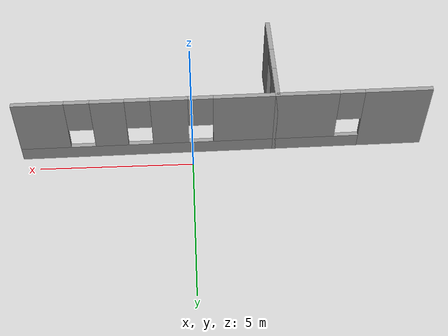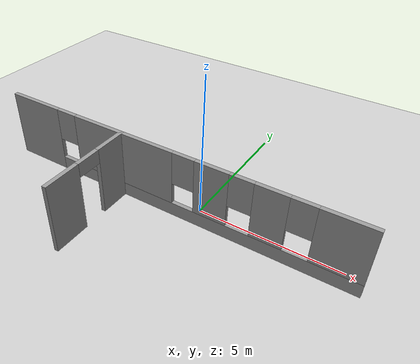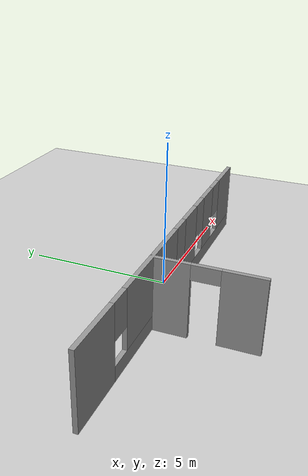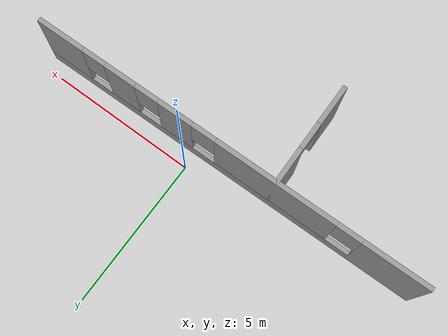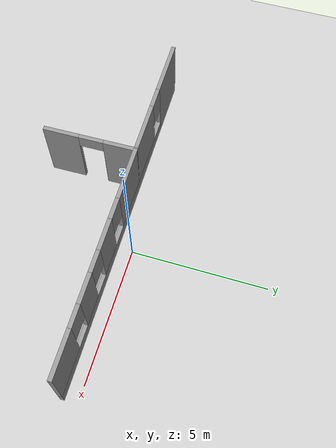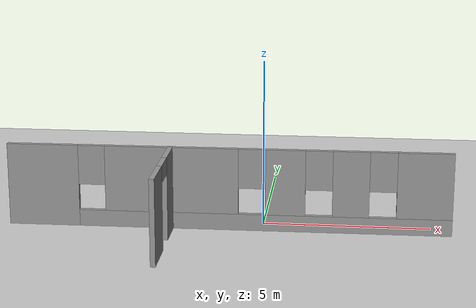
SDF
<sdf version="1.6">
 <world name="default">
  <model name="ground_plane">
   <static>1</static>
   <link name="link">
    <collision name="collision">
     <geometry><plane><normal>0 0 1</normal><size>100 100</size></plane></geometry>
     <surface>
      <contact><collide_bitmask>65535</collide_bitmask></contact>
      <friction><ode><mu>100</mu><mu2>50</mu2></ode></friction>
     </surface>
    </collision>
    <visual name="visual">
     <cast_shadows>0</cast_shadows>
     <geometry><plane><normal>0 0 1</normal><size>100 100</size></plane></geometry>
     <material>
      <script><uri>file://media/materials/scripts/gazebo.material</uri><name>Gazebo/Grey</name></script>
     </material>
    </visual>
   </link>
  </model>
  <model name="Robo-Space.sdf">
   <link name="Wall_3">
    <pose>-1.7 1.675 0 0 -0 1.5708</pose>
    <visual name="Wall_3_Visual_0">
     <pose>-1.0825 0 1.25 0 -0 0</pose>
     <geometry><box><size>1.335 0.15 2.5</size></box></geometry>
     <material>
      <script><uri>file://media/materials/scripts/gazebo.material</uri><name>Gazebo/Grey</name></script>
      <ambient>1 1 1 1</ambient>
      <shader type="pixel"/>
      <diffuse>0.7 0.7 0.7 1</diffuse>
      <specular>0.01 0.01 0.01 1</specular>
      <emissive>0 0 0 1</emissive>
     </material>
     <meta><layer>0</layer></meta>
    </visual>
    <visual name="Wall_3_Visual_1">
     <pose>1.1175 0 1.25 0 -0 0</pose>
     <geometry><box><size>1.265 0.15 2.5</size></box></geometry>
     <material>
      <script><uri>file://media/materials/scripts/gazebo.material</uri><name>Gazebo/Grey</name></script>
      <ambient>1 1 1 1</ambient>
      <shader type="pixel"/>
      <diffuse>0.7 0.7 0.7 1</diffuse>
      <specular>0.01 0.01 0.01 1</specular>
      <emissive>0 0 0 1</emissive>
     </material>
     <meta><layer>0</layer></meta>
    </visual>
    <visual name="Wall_3_Visual_2">
     <pose>0.035 0 2.25 0 -0 0</pose>
     <geometry><box><size>0.9 0.15 0.5</size></box></geometry>
     <material>
      <script><uri>file://media/materials/scripts/gazebo.material</uri><name>Gazebo/Grey</name></script>
      <ambient>1 1 1 1</ambient>
      <shader type="pixel"/>
      <diffuse>0.7 0.7 0.7 1</diffuse>
      <specular>0.01 0.01 0.01 1</specular>
      <emissive>0 0 0 1</emissive>
     </material>
     <meta><layer>0</layer></meta>
    </visual>
    <collision name="Wall_3_Collision_0">
     <pose>-1.0825 0 1.25 0 -0 0</pose>
     <geometry><box><size>1.335 0.15 2.5</size></box></geometry>
     <surface>
      <friction>
       <ode><mu>1</mu><mu2>1</mu2><fdir1>0 0 0</fdir1><slip1>0</slip1><slip2>0</slip2></ode>
       <torsional>
        <coefficient>1</coefficient>
        <patch_radius>0</patch_radius>
        <surface_radius>0</surface_radius>
        <use_patch_radius>1</use_patch_radius>
        <ode><slip>0</slip></ode>
       </torsional>
      </friction>
      <bounce><restitution_coefficient>0</restitution_coefficient><threshold>1e+06</threshold></bounce>
      <contact>
       <collide_without_contact>0</collide_without_contact>
       <collide_without_contact_bitmask>1</collide_without_contact_bitmask>
       <collide_bitmask>1</collide_bitmask>
       <ode>
        <soft_cfm>0</soft_cfm>
        <soft_erp>0.2</soft_erp>
        <kp>1e+13</kp>
        <kd>1</kd>
        <max_vel>0.01</max_vel>
        <min_depth>0</min_depth>
       </ode>
       <bullet>
        <split_impulse>1</split_impulse>
        <split_impulse_penetration_threshold>-0.01</split_impulse_penetration_threshold>
        <soft_cfm>0</soft_cfm>
        <soft_erp>0.2</soft_erp>
        <kp>1e+13</kp>
        <kd>1</kd>
       </bullet>
      </contact>
     </surface>
    </collision>
    <collision name="Wall_3_Collision_1">
     <pose>1.1175 0 1.25 0 -0 0</pose>
     <geometry><box><size>1.265 0.15 2.5</size></box></geometry>
     <surface>
      <friction>
       <ode><mu>1</mu><mu2>1</mu2><fdir1>0 0 0</fdir1><slip1>0</slip1><slip2>0</slip2></ode>
       <torsional>
        <coefficient>1</coefficient>
        <patch_radius>0</patch_radius>
        <surface_radius>0</surface_radius>
        <use_patch_radius>1</use_patch_radius>
        <ode><slip>0</slip></ode>
       </torsional>
      </friction>
      <bounce><restitution_coefficient>0</restitution_coefficient><threshold>1e+06</threshold></bounce>
      <contact>
       <collide_without_contact>0</collide_without_contact>
       <collide_without_contact_bitmask>1</collide_without_contact_bitmask>
       <collide_bitmask>1</collide_bitmask>
       <ode>
        <soft_cfm>0</soft_cfm>
        <soft_erp>0.2</soft_erp>
        <kp>1e+13</kp>
        <kd>1</kd>
        <max_vel>0.01</max_vel>
        <min_depth>0</min_depth>
       </ode>
       <bullet>
        <split_impulse>1</split_impulse>
        <split_impulse_penetration_threshold>-0.01</split_impulse_penetration_threshold>
        <soft_cfm>0</soft_cfm>
        <soft_erp>0.2</soft_erp>
        <kp>1e+13</kp>
        <kd>1</kd>
       </bullet>
      </contact>
     </surface>
    </collision>
    <collision name="Wall_3_Collision_2">
     <pose>0.035 0 2.25 0 -0 0</pose>
     <geometry><box><size>0.9 0.15 0.5</size></box></geometry>
     <surface>
      <friction>
       <ode><mu>1</mu><mu2>1</mu2><fdir1>0 0 0</fdir1><slip1>0</slip1><slip2>0</slip2></ode>
       <torsional>
        <coefficient>1</coefficient>
        <patch_radius>0</patch_radius>
        <surface_radius>0</surface_radius>
        <use_patch_radius>1</use_patch_radius>
        <ode><slip>0</slip></ode>
       </torsional>
      </friction>
      <bounce><restitution_coefficient>0</restitution_coefficient><threshold>1e+06</threshold></bounce>
      <contact>
       <collide_without_contact>0</collide_without_contact>
       <collide_without_contact_bitmask>1</collide_without_contact_bitmask>
       <collide_bitmask>1</collide_bitmask>
       <ode>
        <soft_cfm>0</soft_cfm>
        <soft_erp>0.2</soft_erp>
        <kp>1e+13</kp>
        <kd>1</kd>
        <max_vel>0.01</max_vel>
        <min_depth>0</min_depth>
       </ode>
       <bullet>
        <split_impulse>1</split_impulse>
        <split_impulse_penetration_threshold>-0.01</split_impulse_penetration_threshold>
        <soft_cfm>0</soft_cfm>
        <soft_erp>0.2</soft_erp>
        <kp>1e+13</kp>
        <kd>1</kd>
       </bullet>
      </contact>
     </surface>
    </collision>
   </link>
   <link name="Wall_5">
    <pose>0 3.35 0 0 -0 0</pose>
    <visual name="Wall_5_Visual_0">
     <pose>-5.5475 0 1.25 0 -0 0</pose>
     <geometry><box><size>2.155 0.15 2.5</size></box></geometry>
     <material>
      <script><uri>file://media/materials/scripts/gazebo.material</uri><name>Gazebo/Grey</name></script>
      <ambient>1 1 1 1</ambient>
      <shader type="pixel"/>
      <diffuse>0.7 0.7 0.7 1</diffuse>
      <specular>0.01 0.01 0.01 1</specular>
      <emissive>0 0 0 1</emissive>
     </material>
     <meta><layer>0</layer></meta>
    </visual>
    <visual name="Wall_5_Visual_1">
     <pose>1.0775 0 0.25 0 -0 0</pose>
     <geometry><box><size>11.095 0.15 0.5</size></box></geometry>
     <material>
      <script><uri>file://media/materials/scripts/gazebo.material</uri><name>Gazebo/Grey</name></script>
      <ambient>1 1 1 1</ambient>
      <shader type="pixel"/>
      <diffuse>0.7 0.7 0.7 1</diffuse>
      <specular>0.01 0.01 0.01 1</specular>
      <emissive>0 0 0 1</emissive>
     </material>
     <meta><layer>0</layer></meta>
    </visual>
    <visual name="Wall_5_Visual_2">
     <pose>-1.67 0 1.5 0 -0 0</pose>
     <geometry><box><size>4 0.15 2</size></box></geometry>
     <material>
      <script><uri>file://media/materials/scripts/gazebo.material</uri><name>Gazebo/Grey</name></script>
      <ambient>1 1 1 1</ambient>
      <shader type="pixel"/>
      <diffuse>0.7 0.7 0.7 1</diffuse>
      <specular>0.01 0.01 0.01 1</specular>
      <emissive>0 0 0 1</emissive>
     </material>
     <meta><layer>0</layer></meta>
    </visual>
    <visual name="Wall_5_Visual_3">
     <pose>1.72 0 1.5 0 -0 0</pose>
     <geometry><box><size>1.18 0.15 2</size></box></geometry>
     <material>
      <script><uri>file://media/materials/scripts/gazebo.material</uri><name>Gazebo/Grey</name></script>
      <ambient>1 1 1 1</ambient>
      <shader type="pixel"/>
      <diffuse>0.7 0.7 0.7 1</diffuse>
      <specular>0.01 0.01 0.01 1</specular>
      <emissive>0 0 0 1</emissive>
     </material>
     <meta><layer>0</layer></meta>
    </visual>
    <visual name="Wall_5_Visual_4">
     <pose>3.65 0 1.5 0 -0 0</pose>
     <geometry><box><size>1.08 0.15 2</size></box></geometry>
     <material>
      <script><uri>file://media/materials/scripts/gazebo.material</uri><name>Gazebo/Grey</name></script>
      <ambient>1 1 1 1</ambient>
      <shader type="pixel"/>
      <diffuse>0.7 0.7 0.7 1</diffuse>
      <specular>0.01 0.01 0.01 1</specular>
      <emissive>0 0 0 1</emissive>
     </material>
     <meta><layer>0</layer></meta>
    </visual>
    <visual name="Wall_5_Visual_5">
     <pose>5.8075 0 1.5 0 -0 0</pose>
     <geometry><box><size>1.635 0.15 2</size></box></geometry>
     <material>
      <script><uri>file://media/materials/scripts/gazebo.material</uri><name>Gazebo/Grey</name></script>
      <ambient>1 1 1 1</ambient>
      <shader type="pixel"/>
      <diffuse>0.7 0.7 0.7 1</diffuse>
      <specular>0.01 0.01 0.01 1</specular>
      <emissive>0 0 0 1</emissive>
     </material>
     <meta><layer>0</layer></meta>
    </visual>
    <visual name="Wall_5_Visual_6">
     <pose>-4.07 0 1.9 0 -0 0</pose>
     <geometry><box><size>0.8 0.15 1.2</size></box></geometry>
     <material>
      <script><uri>file://media/materials/scripts/gazebo.material</uri><name>Gazebo/Grey</name></script>
      <ambient>1 1 1 1</ambient>
      <shader type="pixel"/>
      <diffuse>0.7 0.7 0.7 1</diffuse>
      <specular>0.01 0.01 0.01 1</specular>
      <emissive>0 0 0 1</emissive>
     </material>
     <meta><layer>0</layer></meta>
    </visual>
    <visual name="Wall_5_Visual_7">
     <pose>0.73 0 1.9 0 -0 0</pose>
     <geometry><box><size>0.8 0.15 1.2</size></box></geometry>
     <material>
      <script><uri>file://media/materials/scripts/gazebo.material</uri><name>Gazebo/Grey</name></script>
      <ambient>1 1 1 1</ambient>
      <shader type="pixel"/>
      <diffuse>0.7 0.7 0.7 1</diffuse>
      <specular>0.01 0.01 0.01 1</specular>
      <emissive>0 0 0 1</emissive>
     </material>
     <meta><layer>0</layer></meta>
    </visual>
    <visual name="Wall_5_Visual_8">
     <pose>2.71 0 1.9 0 -0 0</pose>
     <geometry><box><size>0.8 0.15 1.2</size></box></geometry>
     <material>
      <script><uri>file://media/materials/scripts/gazebo.material</uri><name>Gazebo/Grey</name></script>
      <ambient>1 1 1 1</ambient>
      <shader type="pixel"/>
      <diffuse>0.7 0.7 0.7 1</diffuse>
      <specular>0.01 0.01 0.01 1</specular>
      <emissive>0 0 0 1</emissive>
     </material>
     <meta><layer>0</layer></meta>
    </visual>
    <visual name="Wall_5_Visual_9">
     <pose>4.59 0 1.9 0 -0 0</pose>
     <geometry><box><size>0.8 0.15 1.2</size></box></geometry>
     <material>
      <script><uri>file://media/materials/scripts/gazebo.material</uri><name>Gazebo/Grey</name></script>
      <ambient>1 1 1 1</ambient>
      <shader type="pixel"/>
      <diffuse>0.7 0.7 0.7 1</diffuse>
      <specular>0.01 0.01 0.01 1</specular>
      <emissive>0 0 0 1</emissive>
     </material>
     <meta><layer>0</layer></meta>
    </visual>
    <collision name="Wall_5_Collision_0">
     <pose>-5.5475 0 1.25 0 -0 0</pose>
     <geometry><box><size>2.155 0.15 2.5</size></box></geometry>
     <surface>
      <friction>
       <ode><mu>1</mu><mu2>1</mu2><fdir1>0 0 0</fdir1><slip1>0</slip1><slip2>0</slip2></ode>
       <torsional>
        <coefficient>1</coefficient>
        <patch_radius>0</patch_radius>
        <surface_radius>0</surface_radius>
        <use_patch_radius>1</use_patch_radius>
        <ode><slip>0</slip></ode>
       </torsional>
      </friction>
      <bounce><restitution_coefficient>0</restitution_coefficient><threshold>1e+06</threshold></bounce>
      <contact>
       <collide_without_contact>0</collide_without_contact>
       <collide_without_contact_bitmask>1</collide_without_contact_bitmask>
       <collide_bitmask>1</collide_bitmask>
       <ode>
        <soft_cfm>0</soft_cfm>
        <soft_erp>0.2</soft_erp>
        <kp>1e+13</kp>
        <kd>1</kd>
        <max_vel>0.01</max_vel>
        <min_depth>0</min_depth>
       </ode>
       <bullet>
        <split_impulse>1</split_impulse>
        <split_impulse_penetration_threshold>-0.01</split_impulse_penetration_threshold>
        <soft_cfm>0</soft_cfm>
        <soft_erp>0.2</soft_erp>
        <kp>1e+13</kp>
        <kd>1</kd>
       </bullet>
      </contact>
     </surface>
    </collision>
    <collision name="Wall_5_Collision_1">
     <pose>1.0775 0 0.25 0 -0 0</pose>
     <geometry><box><size>11.095 0.15 0.5</size></box></geometry>
     <surface>
      <friction>
       <ode><mu>1</mu><mu2>1</mu2><fdir1>0 0 0</fdir1><slip1>0</slip1><slip2>0</slip2></ode>
       <torsional>
        <coefficient>1</coefficient>
        <patch_radius>0</patch_radius>
        <surface_radius>0</surface_radius>
        <use_patch_radius>1</use_patch_radius>
        <ode><slip>0</slip></ode>
       </torsional>
      </friction>
      <bounce><restitution_coefficient>0</restitution_coefficient><threshold>1e+06</threshold></bounce>
      <contact>
       <collide_without_contact>0</collide_without_contact>
       <collide_without_contact_bitmask>1</collide_without_contact_bitmask>
       <collide_bitmask>1</collide_bitmask>
       <ode>
        <soft_cfm>0</soft_cfm>
        <soft_erp>0.2</soft_erp>
        <kp>1e+13</kp>
        <kd>1</kd>
        <max_vel>0.01</max_vel>
        <min_depth>0</min_depth>
       </ode>
       <bullet>
        <split_impulse>1</split_impulse>
        <split_impulse_penetration_threshold>-0.01</split_impulse_penetration_threshold>
        <soft_cfm>0</soft_cfm>
        <soft_erp>0.2</soft_erp>
        <kp>1e+13</kp>
        <kd>1</kd>
       </bullet>
      </contact>
     </surface>
    </collision>
    <collision name="Wall_5_Collision_2">
     <pose>-1.67 0 1.5 0 -0 0</pose>
     <geometry><box><size>4 0.15 2</size></box></geometry>
     <surface>
      <friction>
       <ode><mu>1</mu><mu2>1</mu2><fdir1>0 0 0</fdir1><slip1>0</slip1><slip2>0</slip2></ode>
       <torsional>
        <coefficient>1</coefficient>
        <patch_radius>0</patch_radius>
        <surface_radius>0</surface_radius>
        <use_patch_radius>1</use_patch_radius>
        <ode><slip>0</slip></ode>
       </torsional>
      </friction>
      <bounce><restitution_coefficient>0</restitution_coefficient><threshold>1e+06</threshold></bounce>
      <contact>
       <collide_without_contact>0</collide_without_contact>
       <collide_without_contact_bitmask>1</collide_without_contact_bitmask>
       <collide_bitmask>1</collide_bitmask>
       <ode>
        <soft_cfm>0</soft_cfm>
        <soft_erp>0.2</soft_erp>
        <kp>1e+13</kp>
        <kd>1</kd>
        <max_vel>0.01</max_vel>
        <min_depth>0</min_depth>
       </ode>
       <bullet>
        <split_impulse>1</split_impulse>
        <split_impulse_penetration_threshold>-0.01</split_impulse_penetration_threshold>
        <soft_cfm>0</soft_cfm>
        <soft_erp>0.2</soft_erp>
        <kp>1e+13</kp>
        <kd>1</kd>
       </bullet>
      </contact>
     </surface>
    </collision>
    <collision name="Wall_5_Collision_3">
     <pose>1.72 0 1.5 0 -0 0</pose>
     <geometry><box><size>1.18 0.15 2</size></box></geometry>
     <surface>
      <friction>
       <ode><mu>1</mu><mu2>1</mu2><fdir1>0 0 0</fdir1><slip1>0</slip1><slip2>0</slip2></ode>
       <torsional>
        <coefficient>1</coefficient>
        <patch_radius>0</patch_radius>
        <surface_radius>0</surface_radius>
        <use_patch_radius>1</use_patch_radius>
        <ode><slip>0</slip></ode>
       </torsional>
      </friction>
      <bounce><restitution_coefficient>0</restitution_coefficient><threshold>1e+06</threshold></bounce>
      <contact>
       <collide_without_contact>0</collide_without_contact>
       <collide_without_contact_bitmask>1</collide_without_contact_bitmask>
       <collide_bitmask>1</collide_bitmask>
       <ode>
        <soft_cfm>0</soft_cfm>
        <soft_erp>0.2</soft_erp>
        <kp>1e+13</kp>
        <kd>1</kd>
        <max_vel>0.01</max_vel>
        <min_depth>0</min_depth>
       </ode>
       <bullet>
        <split_impulse>1</split_impulse>
        <split_impulse_penetration_threshold>-0.01</split_impulse_penetration_threshold>
        <soft_cfm>0</soft_cfm>
        <soft_erp>0.2</soft_erp>
        <kp>1e+13</kp>
        <kd>1</kd>
       </bullet>
      </contact>
     </surface>
    </collision>
    <collision name="Wall_5_Collision_4">
     <pose>3.65 0 1.5 0 -0 0</pose>
     <geometry><box><size>1.08 0.15 2</size></box></geometry>
     <surface>
      <friction>
       <ode><mu>1</mu><mu2>1</mu2><fdir1>0 0 0</fdir1><slip1>0</slip1><slip2>0</slip2></ode>
       <torsional>
        <coefficient>1</coefficient>
        <patch_radius>0</patch_radius>
        <surface_radius>0</surface_radius>
        <use_patch_radius>1</use_patch_radius>
        <ode><slip>0</slip></ode>
       </torsional>
      </friction>
      <bounce><restitution_coefficient>0</restitution_coefficient><threshold>1e+06</threshold></bounce>
      <contact>
       <collide_without_contact>0</collide_without_contact>
       <collide_without_contact_bitmask>1</collide_without_contact_bitmask>
       <collide_bitmask>1</collide_bitmask>
       <ode>
        <soft_cfm>0</soft_cfm>
        <soft_erp>0.2</soft_erp>
        <kp>1e+13</kp>
        <kd>1</kd>
        <max_vel>0.01</max_vel>
        <min_depth>0</min_depth>
       </ode>
       <bullet>
        <split_impulse>1</split_impulse>
        <split_impulse_penetration_threshold>-0.01</split_impulse_penetration_threshold>
        <soft_cfm>0</soft_cfm>
        <soft_erp>0.2</soft_erp>
        <kp>1e+13</kp>
        <kd>1</kd>
       </bullet>
      </contact>
     </surface>
    </collision>
    <collision name="Wall_5_Collision_5">
     <pose>5.8075 0 1.5 0 -0 0</pose>
     <geometry><box><size>1.635 0.15 2</size></box></geometry>
     <surface>
      <friction>
       <ode><mu>1</mu><mu2>1</mu2><fdir1>0 0 0</fdir1><slip1>0</slip1><slip2>0</slip2></ode>
       <torsional>
        <coefficient>1</coefficient>
        <patch_radius>0</patch_radius>
        <surface_radius>0</surface_radius>
        <use_patch_radius>1</use_patch_radius>
        <ode><slip>0</slip></ode>
       </torsional>
      </friction>
      <bounce><restitution_coefficient>0</restitution_coefficient><threshold>1e+06</threshold></bounce>
      <contact>
       <collide_without_contact>0</collide_without_contact>
       <collide_without_contact_bitmask>1</collide_without_contact_bitmask>
       <collide_bitmask>1</collide_bitmask>
       <ode>
        <soft_cfm>0</soft_cfm>
        <soft_erp>0.2</soft_erp>
        <kp>1e+13</kp>
        <kd>1</kd>
        <max_vel>0.01</max_vel>
        <min_depth>0</min_depth>
       </ode>
       <bullet>
        <split_impulse>1</split_impulse>
        <split_impulse_penetration_threshold>-0.01</split_impulse_penetration_threshold>
        <soft_cfm>0</soft_cfm>
        <soft_erp>0.2</soft_erp>
        <kp>1e+13</kp>
        <kd>1</kd>
       </bullet>
      </contact>
     </surface>
    </collision>
    <collision name="Wall_5_Collision_6">
     <pose>-4.07 0 1.9 0 -0 0</pose>
     <geometry><box><size>0.8 0.15 1.2</size></box></geometry>
     <surface>
      <friction>
       <ode><mu>1</mu><mu2>1</mu2><fdir1>0 0 0</fdir1><slip1>0</slip1><slip2>0</slip2></ode>
       <torsional>
        <coefficient>1</coefficient>
        <patch_radius>0</patch_radius>
        <surface_radius>0</surface_radius>
        <use_patch_radius>1</use_patch_radius>
        <ode><slip>0</slip></ode>
       </torsional>
      </friction>
      <bounce><restitution_coefficient>0</restitution_coefficient><threshold>1e+06</threshold></bounce>
      <contact>
       <collide_without_contact>0</collide_without_contact>
       <collide_without_contact_bitmask>1</collide_without_contact_bitmask>
       <collide_bitmask>1</collide_bitmask>
       <ode>
        <soft_cfm>0</soft_cfm>
        <soft_erp>0.2</soft_erp>
        <kp>1e+13</kp>
        <kd>1</kd>
        <max_vel>0.01</max_vel>
        <min_depth>0</min_depth>
       </ode>
       <bullet>
        <split_impulse>1</split_impulse>
        <split_impulse_penetration_threshold>-0.01</split_impulse_penetration_threshold>
        <soft_cfm>0</soft_cfm>
        <soft_erp>0.2</soft_erp>
        <kp>1e+13</kp>
        <kd>1</kd>
       </bullet>
      </contact>
     </surface>
    </collision>
    <collision name="Wall_5_Collision_7">
     <pose>0.73 0 1.9 0 -0 0</pose>
     <geometry><box><size>0.8 0.15 1.2</size></box></geometry>
     <surface>
      <friction>
       <ode><mu>1</mu><mu2>1</mu2><fdir1>0 0 0</fdir1><slip1>0</slip1><slip2>0</slip2></ode>
       <torsional>
        <coefficient>1</coefficient>
        <patch_radius>0</patch_radius>
        <surface_radius>0</surface_radius>
        <use_patch_radius>1</use_patch_radius>
        <ode><slip>0</slip></ode>
       </torsional>
      </friction>
      <bounce><restitution_coefficient>0</restitution_coefficient><threshold>1e+06</threshold></bounce>
      <contact>
       <collide_without_contact>0</collide_without_contact>
       <collide_without_contact_bitmask>1</collide_without_contact_bitmask>
       <collide_bitmask>1</collide_bitmask>
       <ode>
        <soft_cfm>0</soft_cfm>
        <soft_erp>0.2</soft_erp>
        <kp>1e+13</kp>
        <kd>1</kd>
        <max_vel>0.01</max_vel>
        <min_depth>0</min_depth>
       </ode>
       <bullet>
        <split_impulse>1</split_impulse>
        <split_impulse_penetration_threshold>-0.01</split_impulse_penetration_threshold>
        <soft_cfm>0</soft_cfm>
        <soft_erp>0.2</soft_erp>
        <kp>1e+13</kp>
        <kd>1</kd>
       </bullet>
      </contact>
     </surface>
    </collision>
    <collision name="Wall_5_Collision_8">
     <pose>2.71 0 1.9 0 -0 0</pose>
     <geometry><box><size>0.8 0.15 1.2</size></box></geometry>
     <surface>
      <friction>
       <ode><mu>1</mu><mu2>1</mu2><fdir1>0 0 0</fdir1><slip1>0</slip1><slip2>0</slip2></ode>
       <torsional>
        <coefficient>1</coefficient>
        <patch_radius>0</patch_radius>
        <surface_radius>0</surface_radius>
        <use_patch_radius>1</use_patch_radius>
        <ode><slip>0</slip></ode>
       </torsional>
      </friction>
      <bounce><restitution_coefficient>0</restitution_coefficient><threshold>1e+06</threshold></bounce>
      <contact>
       <collide_without_contact>0</collide_without_contact>
       <collide_without_contact_bitmask>1</collide_without_contact_bitmask>
       <collide_bitmask>1</collide_bitmask>
       <ode>
        <soft_cfm>0</soft_cfm>
        <soft_erp>0.2</soft_erp>
        <kp>1e+13</kp>
        <kd>1</kd>
        <max_vel>0.01</max_vel>
        <min_depth>0</min_depth>
       </ode>
       <bullet>
        <split_impulse>1</split_impulse>
        <split_impulse_penetration_threshold>-0.01</split_impulse_penetration_threshold>
        <soft_cfm>0</soft_cfm>
        <soft_erp>0.2</soft_erp>
        <kp>1e+13</kp>
        <kd>1</kd>
       </bullet>
      </contact>
     </surface>
    </collision>
    <collision name="Wall_5_Collision_9">
     <pose>4.59 0 1.9 0 -0 0</pose>
     <geometry><box><size>0.8 0.15 1.2</size></box></geometry>
     <surface>
      <friction>
       <ode><mu>1</mu><mu2>1</mu2><fdir1>0 0 0</fdir1><slip1>0</slip1><slip2>0</slip2></ode>
       <torsional>
        <coefficient>1</coefficient>
        <patch_radius>0</patch_radius>
        <surface_radius>0</surface_radius>
        <use_patch_radius>1</use_patch_radius>
        <ode><slip>0</slip></ode>
       </torsional>
      </friction>
      <bounce><restitution_coefficient>0</restitution_coefficient><threshold>1e+06</threshold></bounce>
      <contact>
       <collide_without_contact>0</collide_without_contact>
       <collide_without_contact_bitmask>1</collide_without_contact_bitmask>
       <collide_bitmask>1</collide_bitmask>
       <ode>
        <soft_cfm>0</soft_cfm>
        <soft_erp>0.2</soft_erp>
        <kp>1e+13</kp>
        <kd>1</kd>
        <max_vel>0.01</max_vel>
        <min_depth>0</min_depth>
       </ode>
       <bullet>
        <split_impulse>1</split_impulse>
        <split_impulse_penetration_threshold>-0.01</split_impulse_penetration_threshold>
        <soft_cfm>0</soft_cfm>
        <soft_erp>0.2</soft_erp>
        <kp>1e+13</kp>
        <kd>1</kd>
       </bullet>
      </contact>
     </surface>
    </collision>
   </link>
   <static>1</static>
   <pose>-0.980002 -3.96999 0 0 -0 0.01242</pose>
  </model>
 </world>
</sdf>
